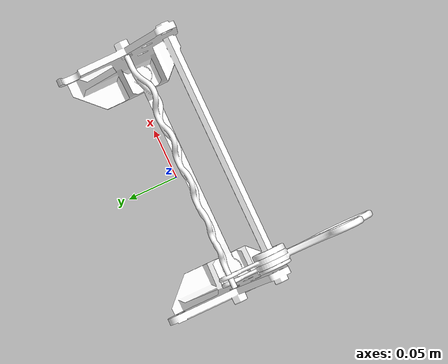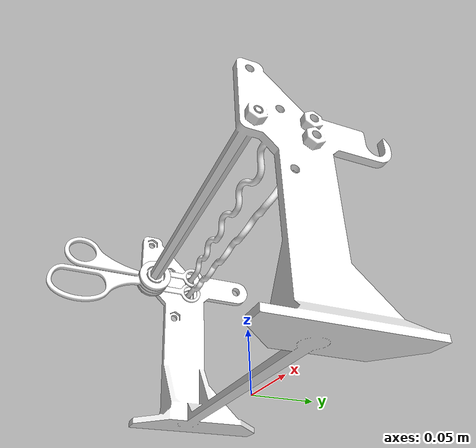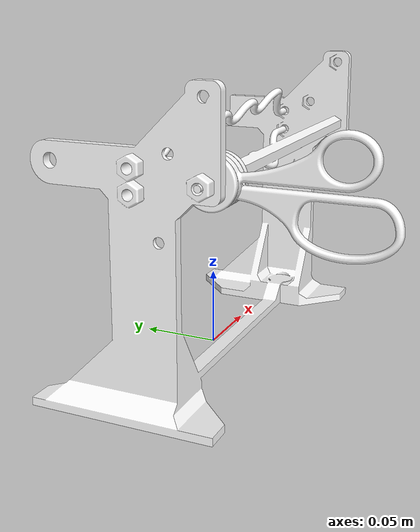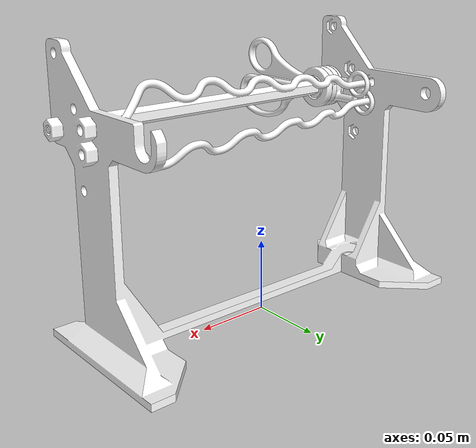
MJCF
<mujoco model="H1_Scissors">

  <asset>
    <mesh name="i10_horizontal_base" file="i10_horizontal_base.stl" scale="1 1 1"/>
    <mesh name="i10_traj_upper_part_0" file="i10_traj_upper/part_0.obj" scale="1 1 1"/>
    <mesh name="i10_traj_upper_part_1" file="i10_traj_upper/part_1.obj" scale="1 1 1"/>
    <mesh name="i10_traj_upper_part_2" file="i10_traj_upper/part_2.obj" scale="1 1 1"/>
    <mesh name="i10_traj_upper_part_3" file="i10_traj_upper/part_3.obj" scale="1 1 1"/>
    <mesh name="i10_traj_upper_part_4" file="i10_traj_upper/part_4.obj" scale="1 1 1"/>
    <mesh name="i10_traj_upper_part_5" file="i10_traj_upper/part_5.obj" scale="1 1 1"/>
    <mesh name="i10_traj_upper_part_6" file="i10_traj_upper/part_6.obj" scale="1 1 1"/>
    <mesh name="i10_traj_upper_part_7" file="i10_traj_upper/part_7.obj" scale="1 1 1"/>
    <mesh name="i10_traj_upper_part_8" file="i10_traj_upper/part_8.obj" scale="1 1 1"/>
    <mesh name="i10_traj_upper_part_9" file="i10_traj_upper/part_9.obj" scale="1 1 1"/>
    <mesh name="i10_traj_upper_part_10" file="i10_traj_upper/part_10.obj" scale="1 1 1"/>
    <mesh name="i10_traj_upper_part_11" file="i10_traj_upper/part_11.obj" scale="1 1 1"/>
    <mesh name="i10_traj_upper_part_12" file="i10_traj_upper/part_12.obj" scale="1 1 1"/>
    <mesh name="i10_traj_upper_part_13" file="i10_traj_upper/part_13.obj" scale="1 1 1"/>
    <mesh name="i10_traj_upper_part_14" file="i10_traj_upper/part_14.obj" scale="1 1 1"/>
    <mesh name="i10_traj_upper_part_15" file="i10_traj_upper/part_15.obj" scale="1 1 1"/>
    <mesh name="i10_traj_upper_part_16" file="i10_traj_upper/part_16.obj" scale="1 1 1"/>
    <mesh name="i10_traj_upper_part_17" file="i10_traj_upper/part_17.obj" scale="1 1 1"/>
    <mesh name="i10_traj_upper_part_18" file="i10_traj_upper/part_18.obj" scale="1 1 1"/>
    <mesh name="i10_traj_upper_part_19" file="i10_traj_upper/part_19.obj" scale="1 1 1"/>
    <mesh name="i10_traj_upper_part_20" file="i10_traj_upper/part_20.obj" scale="1 1 1"/>
    <mesh name="i10_traj_upper_part_21" file="i10_traj_upper/part_21.obj" scale="1 1 1"/>
    <mesh name="i10_traj_upper_part_22" file="i10_traj_upper/part_22.obj" scale="1 1 1"/>

    <mesh name="i10_traj_lower_part_0" file="i10_traj_lower/part_0.obj" scale="1 1 1"/>
    <mesh name="i10_traj_lower_part_1" file="i10_traj_lower/part_1.obj" scale="1 1 1"/>
    <mesh name="i10_traj_lower_part_2" file="i10_traj_lower/part_2.obj" scale="1 1 1"/>
    <mesh name="i10_traj_lower_part_3" file="i10_traj_lower/part_3.obj" scale="1 1 1"/>
    <mesh name="i10_traj_lower_part_4" file="i10_traj_lower/part_4.obj" scale="1 1 1"/>
    <mesh name="i10_traj_lower_part_5" file="i10_traj_lower/part_5.obj" scale="1 1 1"/>
    <mesh name="i10_traj_lower_part_6" file="i10_traj_lower/part_6.obj" scale="1 1 1"/>
    <mesh name="i10_traj_lower_part_7" file="i10_traj_lower/part_7.obj" scale="1 1 1"/>
    <mesh name="i10_traj_lower_part_8" file="i10_traj_lower/part_8.obj" scale="1 1 1"/>
    <mesh name="i10_traj_lower_part_9" file="i10_traj_lower/part_9.obj" scale="1 1 1"/>
    <mesh name="i10_traj_lower_part_10" file="i10_traj_lower/part_10.obj" scale="1 1 1"/>
    <mesh name="i10_traj_lower_part_11" file="i10_traj_lower/part_11.obj" scale="1 1 1"/>
    <mesh name="i10_traj_lower_part_12" file="i10_traj_lower/part_12.obj" scale="1 1 1"/>
    <mesh name="i10_traj_lower_part_13" file="i10_traj_lower/part_13.obj" scale="1 1 1"/>
    <mesh name="i10_traj_lower_part_14" file="i10_traj_lower/part_14.obj" scale="1 1 1"/>
    <mesh name="i10_traj_lower_part_15" file="i10_traj_lower/part_15.obj" scale="1 1 1"/>
    <mesh name="i10_traj_lower_part_16" file="i10_traj_lower/part_16.obj" scale="1 1 1"/>
    <mesh name="i10_traj_lower_part_17" file="i10_traj_lower/part_17.obj" scale="1 1 1"/>
    <mesh name="i10_traj_lower_part_18" file="i10_traj_lower/part_18.obj" scale="1 1 1"/>
    <mesh name="i10_traj_lower_part_19" file="i10_traj_lower/part_19.obj" scale="1 1 1"/>
    <mesh name="i10_traj_lower_part_20" file="i10_traj_lower/part_20.obj" scale="1 1 1"/>
    <mesh name="i10_traj_lower_part_21" file="i10_traj_lower/part_21.obj" scale="1 1 1"/>
    <mesh name="i10_traj_lower_part_22" file="i10_traj_lower/part_22.obj" scale="1 1 1"/>
    <mesh name="i10_traj_lower_part_23" file="i10_traj_lower/part_23.obj" scale="1 1 1"/>
    <mesh name="i10_traj_lower_part_24" file="i10_traj_lower/part_24.obj" scale="1 1 1"/>

    <mesh name="scissors_joint" file="scissors_joint.stl" scale="1 1 1"/>
    <mesh name="scissors_finger_side" file="scissors_finger_side.stl" scale="1 1 1"/>
    <mesh name="scissors_thumb_side" file="scissors_thumb_side.stl" scale="1 1 1"/>

    <mesh name="i10_thumb_handle_convex_part_0" file="i10_thumb_handle_decomposed_meshes/i10_thumb_handle_convex_part_0.obj" scale="1 1 1"/>
    <mesh name="i10_thumb_handle_convex_part_1" file="i10_thumb_handle_decomposed_meshes/i10_thumb_handle_convex_part_1.obj" scale="1 1 1"/>
    <mesh name="i10_thumb_handle_convex_part_2" file="i10_thumb_handle_decomposed_meshes/i10_thumb_handle_convex_part_2.obj" scale="1 1 1"/>
    <mesh name="i10_thumb_handle_convex_part_3" file="i10_thumb_handle_decomposed_meshes/i10_thumb_handle_convex_part_3.obj" scale="1 1 1"/>
    <mesh name="i10_thumb_handle_convex_part_4" file="i10_thumb_handle_decomposed_meshes/i10_thumb_handle_convex_part_4.obj" scale="1 1 1"/>
    <mesh name="i10_thumb_handle_convex_part_5" file="i10_thumb_handle_decomposed_meshes/i10_thumb_handle_convex_part_5.obj" scale="1 1 1"/>
    <mesh name="i10_thumb_handle_convex_part_6" file="i10_thumb_handle_decomposed_meshes/i10_thumb_handle_convex_part_6.obj" scale="1 1 1"/>
    <mesh name="i10_thumb_handle_convex_part_7" file="i10_thumb_handle_decomposed_meshes/i10_thumb_handle_convex_part_7.obj" scale="1 1 1"/>
    <mesh name="i10_thumb_handle_convex_part_8" file="i10_thumb_handle_decomposed_meshes/i10_thumb_handle_convex_part_8.obj" scale="1 1 1"/>
    <mesh name="i10_thumb_handle_convex_part_9" file="i10_thumb_handle_decomposed_meshes/i10_thumb_handle_convex_part_9.obj" scale="1 1 1"/>
    <mesh name="i10_thumb_handle_convex_part_10" file="i10_thumb_handle_decomposed_meshes/i10_thumb_handle_convex_part_10.obj" scale="1 1 1"/>
    <mesh name="i10_thumb_handle_convex_part_11" file="i10_thumb_handle_decomposed_meshes/i10_thumb_handle_convex_part_11.obj" scale="1 1 1"/>
    <mesh name="i10_thumb_handle_convex_part_12" file="i10_thumb_handle_decomposed_meshes/i10_thumb_handle_convex_part_12.obj" scale="1 1 1"/>
    <mesh name="i10_thumb_handle_convex_part_13" file="i10_thumb_handle_decomposed_meshes/i10_thumb_handle_convex_part_13.obj" scale="1 1 1"/>
    <mesh name="i10_thumb_handle_convex_part_14" file="i10_thumb_handle_decomposed_meshes/i10_thumb_handle_convex_part_14.obj" scale="1 1 1"/>
    <mesh name="i10_thumb_handle_convex_part_15" file="i10_thumb_handle_decomposed_meshes/i10_thumb_handle_convex_part_15.obj" scale="1 1 1"/>
    <mesh name="i10_thumb_handle_convex_part_16" file="i10_thumb_handle_decomposed_meshes/i10_thumb_handle_convex_part_16.obj" scale="1 1 1"/>
    <mesh name="i10_thumb_handle_convex_part_17" file="i10_thumb_handle_decomposed_meshes/i10_thumb_handle_convex_part_17.obj" scale="1 1 1"/>
    <mesh name="i10_thumb_handle_convex_part_18" file="i10_thumb_handle_decomposed_meshes/i10_thumb_handle_convex_part_18.obj" scale="1 1 1"/>
    <mesh name="i10_thumb_handle_convex_part_19" file="i10_thumb_handle_decomposed_meshes/i10_thumb_handle_convex_part_19.obj" scale="1 1 1"/>
    <mesh name="i10_thumb_handle_convex_part_20" file="i10_thumb_handle_decomposed_meshes/i10_thumb_handle_convex_part_20.obj" scale="1 1 1"/>

    <mesh name="i10_finger_handle_convex_part_0" file="i10_finger_handle_decomposed_meshes/i10_finger_handle_convex_part_0.obj" scale="1 1 1"/>
    <mesh name="i10_finger_handle_convex_part_1" file="i10_finger_handle_decomposed_meshes/i10_finger_handle_convex_part_1.obj" scale="1 1 1"/>
    <mesh name="i10_finger_handle_convex_part_2" file="i10_finger_handle_decomposed_meshes/i10_finger_handle_convex_part_2.obj" scale="1 1 1"/>
    <mesh name="i10_finger_handle_convex_part_3" file="i10_finger_handle_decomposed_meshes/i10_finger_handle_convex_part_3.obj" scale="1 1 1"/>
    <mesh name="i10_finger_handle_convex_part_4" file="i10_finger_handle_decomposed_meshes/i10_finger_handle_convex_part_4.obj" scale="1 1 1"/>
    <mesh name="i10_finger_handle_convex_part_5" file="i10_finger_handle_decomposed_meshes/i10_finger_handle_convex_part_5.obj" scale="1 1 1"/>
    <mesh name="i10_finger_handle_convex_part_6" file="i10_finger_handle_decomposed_meshes/i10_finger_handle_convex_part_6.obj" scale="1 1 1"/>
    <mesh name="i10_finger_handle_convex_part_7" file="i10_finger_handle_decomposed_meshes/i10_finger_handle_convex_part_7.obj" scale="1 1 1"/>
    <mesh name="i10_finger_handle_convex_part_8" file="i10_finger_handle_decomposed_meshes/i10_finger_handle_convex_part_8.obj" scale="1 1 1"/>
    <mesh name="i10_finger_handle_convex_part_9" file="i10_finger_handle_decomposed_meshes/i10_finger_handle_convex_part_9.obj" scale="1 1 1"/>
    <mesh name="i10_finger_handle_convex_part_10" file="i10_finger_handle_decomposed_meshes/i10_finger_handle_convex_part_10.obj" scale="1 1 1"/>
    <mesh name="i10_finger_handle_convex_part_11" file="i10_finger_handle_decomposed_meshes/i10_finger_handle_convex_part_11.obj" scale="1 1 1"/>
    <mesh name="i10_finger_handle_convex_part_12" file="i10_finger_handle_decomposed_meshes/i10_finger_handle_convex_part_12.obj" scale="1 1 1"/>
    <mesh name="i10_finger_handle_convex_part_13" file="i10_finger_handle_decomposed_meshes/i10_finger_handle_convex_part_13.obj" scale="1 1 1"/>
    <mesh name="i10_finger_handle_convex_part_14" file="i10_finger_handle_decomposed_meshes/i10_finger_handle_convex_part_14.obj" scale="1 1 1"/>
    <mesh name="i10_finger_handle_convex_part_15" file="i10_finger_handle_decomposed_meshes/i10_finger_handle_convex_part_15.obj" scale="1 1 1"/>
    <mesh name="i10_finger_handle_convex_part_16" file="i10_finger_handle_decomposed_meshes/i10_finger_handle_convex_part_16.obj" scale="1 1 1"/>
    <mesh name="i10_finger_handle_convex_part_17" file="i10_finger_handle_decomposed_meshes/i10_finger_handle_convex_part_17.obj" scale="1 1 1"/>
    <mesh name="i10_finger_handle_convex_part_18" file="i10_finger_handle_decomposed_meshes/i10_finger_handle_convex_part_18.obj" scale="1 1 1"/>
    <mesh name="i10_finger_handle_convex_part_19" file="i10_finger_handle_decomposed_meshes/i10_finger_handle_convex_part_19.obj" scale="1 1 1"/>
    <mesh name="i10_finger_handle_convex_part_20" file="i10_finger_handle_decomposed_meshes/i10_finger_handle_convex_part_20.obj" scale="1 1 1"/>
    <mesh name="i10_finger_handle_convex_part_21" file="i10_finger_handle_decomposed_meshes/i10_finger_handle_convex_part_21.obj" scale="1 1 1"/>
    <mesh name="i10_finger_handle_convex_part_22" file="i10_finger_handle_decomposed_meshes/i10_finger_handle_convex_part_22.obj" scale="1 1 1"/>

    <mesh name="i10_ring_convex_part_0" file="i10_ring_decomposed_meshes/i10_ring_convex_part_0.obj" scale="1 1 1"/>
    <mesh name="i10_ring_convex_part_1" file="i10_ring_decomposed_meshes/i10_ring_convex_part_1.obj" scale="1 1 1"/>
    <mesh name="i10_ring_convex_part_2" file="i10_ring_decomposed_meshes/i10_ring_convex_part_2.obj" scale="1 1 1"/>
    <mesh name="i10_ring_convex_part_3" file="i10_ring_decomposed_meshes/i10_ring_convex_part_3.obj" scale="1 1 1"/>
    <mesh name="i10_ring_convex_part_4" file="i10_ring_decomposed_meshes/i10_ring_convex_part_4.obj" scale="1 1 1"/>
    <mesh name="i10_ring_convex_part_5" file="i10_ring_decomposed_meshes/i10_ring_convex_part_5.obj" scale="1 1 1"/>
    <mesh name="i10_ring_convex_part_6" file="i10_ring_decomposed_meshes/i10_ring_convex_part_6.obj" scale="1 1 1"/>
    <mesh name="i10_ring_convex_part_7" file="i10_ring_decomposed_meshes/i10_ring_convex_part_7.obj" scale="1 1 1"/>
    <mesh name="i10_ring_convex_part_8" file="i10_ring_decomposed_meshes/i10_ring_convex_part_8.obj" scale="1 1 1"/>
    <mesh name="i10_ring_convex_part_9" file="i10_ring_decomposed_meshes/i10_ring_convex_part_9.obj" scale="1 1 1"/>
    <mesh name="i10_ring_convex_part_10" file="i10_ring_decomposed_meshes/i10_ring_convex_part_10.obj" scale="1 1 1"/>
    <mesh name="i10_ring_convex_part_11" file="i10_ring_decomposed_meshes/i10_ring_convex_part_11.obj" scale="1 1 1"/>
    <mesh name="i10_ring_convex_part_12" file="i10_ring_decomposed_meshes/i10_ring_convex_part_12.obj" scale="1 1 1"/>
    <mesh name="i10_ring_convex_part_13" file="i10_ring_decomposed_meshes/i10_ring_convex_part_13.obj" scale="1 1 1"/>
    <mesh name="i10_ring_convex_part_14" file="i10_ring_decomposed_meshes/i10_ring_convex_part_14.obj" scale="1 1 1"/>
    <mesh name="i10_ring_convex_part_15" file="i10_ring_decomposed_meshes/i10_ring_convex_part_15.obj" scale="1 1 1"/>
    <mesh name="i10_ring_convex_part_16" file="i10_ring_decomposed_meshes/i10_ring_convex_part_16.obj" scale="1 1 1"/>
    <mesh name="i10_ring_convex_part_17" file="i10_ring_decomposed_meshes/i10_ring_convex_part_17.obj" scale="1 1 1"/>
    <mesh name="i10_ring_convex_part_18" file="i10_ring_decomposed_meshes/i10_ring_convex_part_18.obj" scale="1 1 1"/>
    <mesh name="i10_ring_convex_part_19" file="i10_ring_decomposed_meshes/i10_ring_convex_part_19.obj" scale="1 1 1"/>
    <mesh name="i10_ring_convex_part_20" file="i10_ring_decomposed_meshes/i10_ring_convex_part_20.obj" scale="1 1 1"/>
    <mesh name="i10_ring_convex_part_21" file="i10_ring_decomposed_meshes/i10_ring_convex_part_21.obj" scale="1 1 1"/>
    <mesh name="i10_ring_convex_part_22" file="i10_ring_decomposed_meshes/i10_ring_convex_part_22.obj" scale="1 1 1"/>
    <mesh name="i10_ring_convex_part_23" file="i10_ring_decomposed_meshes/i10_ring_convex_part_23.obj" scale="1 1 1"/>
    <mesh name="i10_ring_convex_part_24" file="i10_ring_decomposed_meshes/i10_ring_convex_part_24.obj" scale="1 1 1"/>
    <mesh name="i10_ring_convex_part_25" file="i10_ring_decomposed_meshes/i10_ring_convex_part_25.obj" scale="1 1 1"/>
    <mesh name="i10_ring_convex_part_26" file="i10_ring_decomposed_meshes/i10_ring_convex_part_26.obj" scale="1 1 1"/>
    <mesh name="i10_ring_convex_part_27" file="i10_ring_decomposed_meshes/i10_ring_convex_part_27.obj" scale="1 1 1"/>
    <mesh name="i10_ring_convex_part_28" file="i10_ring_decomposed_meshes/i10_ring_convex_part_28.obj" scale="1 1 1"/>
    <mesh name="i10_ring_convex_part_29" file="i10_ring_decomposed_meshes/i10_ring_convex_part_29.obj" scale="1 1 1"/>
    <mesh name="i10_ring_convex_part_30" file="i10_ring_decomposed_meshes/i10_ring_convex_part_30.obj" scale="1 1 1"/>
    <mesh name="i10_ring_convex_part_31" file="i10_ring_decomposed_meshes/i10_ring_convex_part_31.obj" scale="1 1 1"/>
    <mesh name="i10_ring_convex_part_32" file="i10_ring_decomposed_meshes/i10_ring_convex_part_32.obj" scale="1 1 1"/>
    <mesh name="i10_ring_convex_part_33" file="i10_ring_decomposed_meshes/i10_ring_convex_part_33.obj" scale="1 1 1"/>
    <mesh name="i10_ring_convex_part_34" file="i10_ring_decomposed_meshes/i10_ring_convex_part_34.obj" scale="1 1 1"/>
    <mesh name="i10_ring_convex_part_35" file="i10_ring_decomposed_meshes/i10_ring_convex_part_35.obj" scale="1 1 1"/>

    <material name="object_material" rgba="1 1 1 1" shininess="0.3"/>
  </asset>

  <default>
    <default class="visual">
      <geom contype="0" conaffinity="0" group="2"/>
    </default>
    <default class="collision">
      <geom group="3"/>
    </default>
  </default>

  <worldbody>
    <body name="i10_horizontal_base_body" pos="0 0 0">
      <geom name="i10_horizontal_base" type="mesh" mesh="i10_horizontal_base" material="object_material" mass="1" class="visual"/>
      <geom type="box" size="0.003 0.020 0.0775" pos="-0.1155 -0.0118 0.0775" density="248" class="collision"/>
      <geom type="box" size="0.003 0.020 0.0775" pos="0.1155 -0.0118 0.0775" density="248" class="collision"/>
      <geom name="i10_traj_upper_part_0" type="mesh" mesh="i10_traj_upper_part_0" class="collision" solref="0.002 1" friction="1 0.1 0.1"/>
      <geom name="i10_traj_upper_part_1" type="mesh" mesh="i10_traj_upper_part_1" class="collision" solref="0.002 1" friction="1 0.1 0.1"/>
      <geom name="i10_traj_upper_part_2" type="mesh" mesh="i10_traj_upper_part_2" class="collision" solref="0.002 1" friction="1 0.1 0.1"/>
      <geom name="i10_traj_upper_part_3" type="mesh" mesh="i10_traj_upper_part_3" class="collision" solref="0.002 1" friction="1 0.1 0.1"/>
      <geom name="i10_traj_upper_part_4" type="mesh" mesh="i10_traj_upper_part_4" class="collision" solref="0.002 1" friction="1 0.1 0.1"/>
      <geom name="i10_traj_upper_part_5" type="mesh" mesh="i10_traj_upper_part_5" class="collision" solref="0.002 1" friction="1 0.1 0.1"/>
      <geom name="i10_traj_upper_part_6" type="mesh" mesh="i10_traj_upper_part_6" class="collision" solref="0.002 1" friction="1 0.1 0.1"/>
      <geom name="i10_traj_upper_part_7" type="mesh" mesh="i10_traj_upper_part_7" class="collision" solref="0.002 1" friction="1 0.1 0.1"/>
      <geom name="i10_traj_upper_part_8" type="mesh" mesh="i10_traj_upper_part_8" class="collision" solref="0.002 1" friction="1 0.1 0.1"/>
      <geom name="i10_traj_upper_part_9" type="mesh" mesh="i10_traj_upper_part_9" class="collision" solref="0.002 1" friction="1 0.1 0.1"/>
      <geom name="i10_traj_upper_part_10" type="mesh" mesh="i10_traj_upper_part_10" class="collision" solref="0.002 1" friction="1 0.1 0.1"/>
      <geom name="i10_traj_upper_part_11" type="mesh" mesh="i10_traj_upper_part_11" class="collision" solref="0.002 1" friction="1 0.1 0.1"/>
      <geom name="i10_traj_upper_part_12" type="mesh" mesh="i10_traj_upper_part_12" class="collision" solref="0.002 1" friction="1 0.1 0.1"/>
      <geom name="i10_traj_upper_part_13" type="mesh" mesh="i10_traj_upper_part_13" class="collision" solref="0.002 1" friction="1 0.1 0.1"/>
      <geom name="i10_traj_upper_part_14" type="mesh" mesh="i10_traj_upper_part_14" class="collision" solref="0.002 1" friction="1 0.1 0.1"/>
      <geom name="i10_traj_upper_part_15" type="mesh" mesh="i10_traj_upper_part_15" class="collision" solref="0.002 1" friction="1 0.1 0.1"/>
      <geom name="i10_traj_upper_part_16" type="mesh" mesh="i10_traj_upper_part_16" class="collision" solref="0.002 1" friction="1 0.1 0.1"/>
      <geom name="i10_traj_upper_part_17" type="mesh" mesh="i10_traj_upper_part_17" class="collision" solref="0.002 1" friction="1 0.1 0.1"/>
      <geom name="i10_traj_upper_part_18" type="mesh" mesh="i10_traj_upper_part_18" class="collision" solref="0.002 1" friction="1 0.1 0.1"/>
      <geom name="i10_traj_upper_part_19" type="mesh" mesh="i10_traj_upper_part_19" class="collision" solref="0.002 1" friction="1 0.1 0.1"/>
      <geom name="i10_traj_upper_part_20" type="mesh" mesh="i10_traj_upper_part_20" class="collision" solref="0.002 1" friction="1 0.1 0.1"/>
      <geom name="i10_traj_upper_part_21" type="mesh" mesh="i10_traj_upper_part_21" class="collision" solref="0.002 1" friction="1 0.1 0.1"/>
      <geom name="i10_traj_upper_part_22" type="mesh" mesh="i10_traj_upper_part_22" class="collision" solref="0.002 1" friction="1 0.1 0.1"/>

      <geom name="i10_traj_lower_part_0" type="mesh" mesh="i10_traj_lower_part_0" class="collision" solref="0.002 1" friction="1 0.1 0.1"/>
      <geom name="i10_traj_lower_part_1" type="mesh" mesh="i10_traj_lower_part_1" class="collision" solref="0.002 1" friction="1 0.1 0.1"/>
      <geom name="i10_traj_lower_part_2" type="mesh" mesh="i10_traj_lower_part_2" class="collision" solref="0.002 1" friction="1 0.1 0.1"/>
      <geom name="i10_traj_lower_part_3" type="mesh" mesh="i10_traj_lower_part_3" class="collision" solref="0.002 1" friction="1 0.1 0.1"/>
      <geom name="i10_traj_lower_part_4" type="mesh" mesh="i10_traj_lower_part_4" class="collision" solref="0.002 1" friction="1 0.1 0.1"/>
      <geom name="i10_traj_lower_part_5" type="mesh" mesh="i10_traj_lower_part_5" class="collision" solref="0.002 1" friction="1 0.1 0.1"/>
      <geom name="i10_traj_lower_part_6" type="mesh" mesh="i10_traj_lower_part_6" class="collision" solref="0.002 1" friction="1 0.1 0.1"/>
      <geom name="i10_traj_lower_part_7" type="mesh" mesh="i10_traj_lower_part_7" class="collision" solref="0.002 1" friction="1 0.1 0.1"/>
      <geom name="i10_traj_lower_part_8" type="mesh" mesh="i10_traj_lower_part_8" class="collision" solref="0.002 1" friction="1 0.1 0.1"/>
      <geom name="i10_traj_lower_part_9" type="mesh" mesh="i10_traj_lower_part_9" class="collision" solref="0.002 1" friction="1 0.1 0.1"/>
      <geom name="i10_traj_lower_part_10" type="mesh" mesh="i10_traj_lower_part_10" class="collision" solref="0.002 1" friction="1 0.1 0.1"/>
      <geom name="i10_traj_lower_part_11" type="mesh" mesh="i10_traj_lower_part_11" class="collision" solref="0.002 1" friction="1 0.1 0.1"/>
      <geom name="i10_traj_lower_part_12" type="mesh" mesh="i10_traj_lower_part_12" class="collision" solref="0.002 1" friction="1 0.1 0.1"/>
      <geom name="i10_traj_lower_part_13" type="mesh" mesh="i10_traj_lower_part_13" class="collision" solref="0.002 1" friction="1 0.1 0.1"/>
      <geom name="i10_traj_lower_part_14" type="mesh" mesh="i10_traj_lower_part_14" class="collision" solref="0.002 1" friction="1 0.1 0.1"/>
      <geom name="i10_traj_lower_part_15" type="mesh" mesh="i10_traj_lower_part_15" class="collision" solref="0.002 1" friction="1 0.1 0.1"/>
      <geom name="i10_traj_lower_part_16" type="mesh" mesh="i10_traj_lower_part_16" class="collision" solref="0.002 1" friction="1 0.1 0.1"/>
      <geom name="i10_traj_lower_part_17" type="mesh" mesh="i10_traj_lower_part_17" class="collision" solref="0.002 1" friction="1 0.1 0.1"/>
      <geom name="i10_traj_lower_part_18" type="mesh" mesh="i10_traj_lower_part_18" class="collision" solref="0.002 1" friction="1 0.1 0.1"/>
      <geom name="i10_traj_lower_part_19" type="mesh" mesh="i10_traj_lower_part_19" class="collision" solref="0.002 1" friction="1 0.1 0.1"/>
      <geom name="i10_traj_lower_part_20" type="mesh" mesh="i10_traj_lower_part_20" class="collision" solref="0.002 1" friction="1 0.1 0.1"/>
      <geom name="i10_traj_lower_part_21" type="mesh" mesh="i10_traj_lower_part_21" class="collision" solref="0.002 1" friction="1 0.1 0.1"/>
      <geom name="i10_traj_lower_part_22" type="mesh" mesh="i10_traj_lower_part_22" class="collision" solref="0.002 1" friction="1 0.1 0.1"/>
      <geom name="i10_traj_lower_part_23" type="mesh" mesh="i10_traj_lower_part_23" class="collision" solref="0.002 1" friction="1 0.1 0.1"/>
      <geom name="i10_traj_lower_part_24" type="mesh" mesh="i10_traj_lower_part_24" class="collision" solref="0.002 1" friction="1 0.1 0.1"/>
    </body>

    <body name="scissors_body" pos="-0.1095 -0.0478 0.138">
      <joint name="scissors_slide" type="slide" axis="1 0 0" range="0 0.20725" damping="0.05"/>
      <geom name="scissors_joint" type="mesh" mesh="scissors_joint" material="object_material" class="visual"/>
      <geom type="cylinder" size="0.0152 0.008875" quat="0.7071068 0 0.7071068 0" pos="0.00588 0 0" density="248" class="collision" solref="0.002 1"/>
      <body name="scissors_thumb_side" pos="0 0 0">
        <joint name="scissors_thumb_side_hinge" type="hinge" axis="-1 0 0" range="0 0.5236" damping="0.05"/>
        <geom name="scissors_thumb_side" type="mesh" mesh="scissors_thumb_side" material="object_material" class="visual"/>
        <geom name="i10_thumb_handle_convex_part_0" type="mesh" mesh="i10_thumb_handle_convex_part_0" class="collision"/>
        <geom name="i10_thumb_handle_convex_part_1" type="mesh" mesh="i10_thumb_handle_convex_part_1" class="collision"/>
        <geom name="i10_thumb_handle_convex_part_2" type="mesh" mesh="i10_thumb_handle_convex_part_2" class="collision"/>
        <geom name="i10_thumb_handle_convex_part_3" type="mesh" mesh="i10_thumb_handle_convex_part_3" class="collision"/>
        <geom name="i10_thumb_handle_convex_part_4" type="mesh" mesh="i10_thumb_handle_convex_part_4" class="collision"/>
        <geom name="i10_thumb_handle_convex_part_5" type="mesh" mesh="i10_thumb_handle_convex_part_5" class="collision"/>
        <geom name="i10_thumb_handle_convex_part_6" type="mesh" mesh="i10_thumb_handle_convex_part_6" class="collision"/>
        <geom name="i10_thumb_handle_convex_part_7" type="mesh" mesh="i10_thumb_handle_convex_part_7" class="collision"/>
        <geom name="i10_thumb_handle_convex_part_8" type="mesh" mesh="i10_thumb_handle_convex_part_8" class="collision"/>
        <geom name="i10_thumb_handle_convex_part_9" type="mesh" mesh="i10_thumb_handle_convex_part_9" class="collision"/>
        <geom name="i10_thumb_handle_convex_part_10" type="mesh" mesh="i10_thumb_handle_convex_part_10" class="collision"/>
        <geom name="i10_thumb_handle_convex_part_11" type="mesh" mesh="i10_thumb_handle_convex_part_11" class="collision"/>
        <geom name="i10_thumb_handle_convex_part_12" type="mesh" mesh="i10_thumb_handle_convex_part_12" class="collision"/>
        <geom name="i10_thumb_handle_convex_part_13" type="mesh" mesh="i10_thumb_handle_convex_part_13" class="collision"/>
        <geom name="i10_thumb_handle_convex_part_14" type="mesh" mesh="i10_thumb_handle_convex_part_14" class="collision"/>
        <geom name="i10_thumb_handle_convex_part_15" type="mesh" mesh="i10_thumb_handle_convex_part_15" class="collision"/>
        <geom name="i10_thumb_handle_convex_part_16" type="mesh" mesh="i10_thumb_handle_convex_part_16" class="collision"/>
        <geom name="i10_thumb_handle_convex_part_17" type="mesh" mesh="i10_thumb_handle_convex_part_17" class="collision"/>
        <geom name="i10_thumb_handle_convex_part_18" type="mesh" mesh="i10_thumb_handle_convex_part_18" class="collision"/>
        <geom name="i10_thumb_handle_convex_part_19" type="mesh" mesh="i10_thumb_handle_convex_part_19" class="collision"/>
        <geom name="i10_thumb_handle_convex_part_20" type="mesh" mesh="i10_thumb_handle_convex_part_20" class="collision"/>

        <geom name="i10_ring_convex_part_0" type="mesh" mesh="i10_ring_convex_part_0" pos="0.00195 0.040 -0.007" density="248" class="collision" friction="1 0.1 0.1"/>
        <geom name="i10_ring_convex_part_1" type="mesh" mesh="i10_ring_convex_part_1" pos="0.00195 0.040 -0.007" density="248" class="collision" friction="1 0.1 0.1"/>
        <geom name="i10_ring_convex_part_2" type="mesh" mesh="i10_ring_convex_part_2" pos="0.00195 0.040 -0.007" density="248" class="collision" friction="1 0.1 0.1"/>
        <geom name="i10_ring_convex_part_3" type="mesh" mesh="i10_ring_convex_part_3" pos="0.00195 0.040 -0.007" density="248" class="collision" friction="1 0.1 0.1"/>
        <geom name="i10_ring_convex_part_4" type="mesh" mesh="i10_ring_convex_part_4" pos="0.00195 0.040 -0.007" density="248" class="collision" friction="1 0.1 0.1"/>
        <geom name="i10_ring_convex_part_5" type="mesh" mesh="i10_ring_convex_part_5" pos="0.00195 0.040 -0.007" density="248" class="collision" friction="1 0.1 0.1"/>
        <geom name="i10_ring_convex_part_6" type="mesh" mesh="i10_ring_convex_part_6" pos="0.00195 0.040 -0.007" density="248" class="collision" friction="1 0.1 0.1"/>
        <geom name="i10_ring_convex_part_7" type="mesh" mesh="i10_ring_convex_part_7" pos="0.00195 0.040 -0.007" density="248" class="collision" friction="1 0.1 0.1"/>
        <geom name="i10_ring_convex_part_8" type="mesh" mesh="i10_ring_convex_part_8" pos="0.00195 0.040 -0.007" density="248" class="collision" friction="1 0.1 0.1"/>
        <geom name="i10_ring_convex_part_9" type="mesh" mesh="i10_ring_convex_part_9" pos="0.00195 0.040 -0.007" density="248" class="collision" friction="1 0.1 0.1"/>
        <geom name="i10_ring_convex_part_10" type="mesh" mesh="i10_ring_convex_part_10" pos="0.00195 0.040 -0.007" density="248" class="collision" friction="1 0.1 0.1"/>
        <geom name="i10_ring_convex_part_11" type="mesh" mesh="i10_ring_convex_part_11" pos="0.00195 0.040 -0.007" density="248" class="collision" friction="1 0.1 0.1"/>
        <geom name="i10_ring_convex_part_12" type="mesh" mesh="i10_ring_convex_part_12" pos="0.00195 0.040 -0.007" density="248" class="collision" friction="1 0.1 0.1"/>
        <geom name="i10_ring_convex_part_13" type="mesh" mesh="i10_ring_convex_part_13" pos="0.00195 0.040 -0.007" density="248" class="collision" friction="1 0.1 0.1"/>
        <geom name="i10_ring_convex_part_14" type="mesh" mesh="i10_ring_convex_part_14" pos="0.00195 0.040 -0.007" density="248" class="collision" friction="1 0.1 0.1"/>
        <geom name="i10_ring_convex_part_15" type="mesh" mesh="i10_ring_convex_part_15" pos="0.00195 0.040 -0.007" density="248" class="collision" friction="1 0.1 0.1"/>
        <geom name="i10_ring_convex_part_16" type="mesh" mesh="i10_ring_convex_part_16" pos="0.00195 0.040 -0.007" density="248" class="collision" friction="1 0.1 0.1"/>
        <geom name="i10_ring_convex_part_17" type="mesh" mesh="i10_ring_convex_part_17" pos="0.00195 0.040 -0.007" density="248" class="collision" friction="1 0.1 0.1"/>
        <geom name="i10_ring_convex_part_18" type="mesh" mesh="i10_ring_convex_part_18" pos="0.00195 0.040 -0.007" density="248" class="collision" friction="1 0.1 0.1"/>
        <geom name="i10_ring_convex_part_19" type="mesh" mesh="i10_ring_convex_part_19" pos="0.00195 0.040 -0.007" density="248" class="collision" friction="1 0.1 0.1"/>
        <geom name="i10_ring_convex_part_20" type="mesh" mesh="i10_ring_convex_part_20" pos="0.00195 0.040 -0.007" density="248" class="collision" friction="1 0.1 0.1"/>
        <geom name="i10_ring_convex_part_21" type="mesh" mesh="i10_ring_convex_part_21" pos="0.00195 0.040 -0.007" density="248" class="collision" friction="1 0.1 0.1"/>
        <geom name="i10_ring_convex_part_22" type="mesh" mesh="i10_ring_convex_part_22" pos="0.00195 0.040 -0.007" density="248" class="collision" friction="1 0.1 0.1"/>
        <geom name="i10_ring_convex_part_23" type="mesh" mesh="i10_ring_convex_part_23" pos="0.00195 0.040 -0.007" density="248" class="collision" friction="1 0.1 0.1"/>
        <geom name="i10_ring_convex_part_24" type="mesh" mesh="i10_ring_convex_part_24" pos="0.00195 0.040 -0.007" density="248" class="collision" friction="1 0.1 0.1"/>
        <geom name="i10_ring_convex_part_25" type="mesh" mesh="i10_ring_convex_part_25" pos="0.00195 0.040 -0.007" density="248" class="collision" friction="1 0.1 0.1"/>
        <geom name="i10_ring_convex_part_26" type="mesh" mesh="i10_ring_convex_part_26" pos="0.00195 0.040 -0.007" density="248" class="collision" friction="1 0.1 0.1"/>
        <geom name="i10_ring_convex_part_27" type="mesh" mesh="i10_ring_convex_part_27" pos="0.00195 0.040 -0.007" density="248" class="collision" friction="1 0.1 0.1"/>
        <geom name="i10_ring_convex_part_28" type="mesh" mesh="i10_ring_convex_part_28" pos="0.00195 0.040 -0.007" density="248" class="collision" friction="1 0.1 0.1"/>
        <geom name="i10_ring_convex_part_29" type="mesh" mesh="i10_ring_convex_part_29" pos="0.00195 0.040 -0.007" density="248" class="collision" friction="1 0.1 0.1"/>
        <geom name="i10_ring_convex_part_30" type="mesh" mesh="i10_ring_convex_part_30" pos="0.00195 0.040 -0.007" density="248" class="collision" friction="1 0.1 0.1"/>
        <geom name="i10_ring_convex_part_31" type="mesh" mesh="i10_ring_convex_part_31" pos="0.00195 0.040 -0.007" density="248" class="collision" friction="1 0.1 0.1"/>
        <geom name="i10_ring_convex_part_32" type="mesh" mesh="i10_ring_convex_part_32" pos="0.00195 0.040 -0.007" density="248" class="collision" friction="1 0.1 0.1"/>
        <geom name="i10_ring_convex_part_33" type="mesh" mesh="i10_ring_convex_part_33" pos="0.00195 0.040 -0.007" density="248" class="collision" friction="1 0.1 0.1"/>
        <geom name="i10_ring_convex_part_34" type="mesh" mesh="i10_ring_convex_part_34" pos="0.00195 0.040 -0.007" density="248" class="collision" friction="1 0.1 0.1"/>
        <geom name="i10_ring_convex_part_35" type="mesh" mesh="i10_ring_convex_part_35" pos="0.00195 0.040 -0.007" density="248" class="collision" friction="1 0.1 0.1"/>
      </body>

      <body name="scissors_finger_side" pos="0 0 0">
        <joint name="scissors_finger_side_hinge" type="hinge" axis="1 0 0" range="0 0.5236" damping="0.05"/>
        <geom name="scissors_finger_side" type="mesh" mesh="scissors_finger_side" material="object_material" class="visual"/>
        <geom name="i10_finger_handle_convex_part_0" type="mesh" mesh="i10_finger_handle_convex_part_0" class="collision"/>
        <geom name="i10_finger_handle_convex_part_1" type="mesh" mesh="i10_finger_handle_convex_part_1" class="collision"/>
        <geom name="i10_finger_handle_convex_part_2" type="mesh" mesh="i10_finger_handle_convex_part_2" class="collision"/>
        <geom name="i10_finger_handle_convex_part_3" type="mesh" mesh="i10_finger_handle_convex_part_3" class="collision"/>
        <geom name="i10_finger_handle_convex_part_4" type="mesh" mesh="i10_finger_handle_convex_part_4" class="collision"/>
        <geom name="i10_finger_handle_convex_part_5" type="mesh" mesh="i10_finger_handle_convex_part_5" class="collision"/>
        <geom name="i10_finger_handle_convex_part_6" type="mesh" mesh="i10_finger_handle_convex_part_6" class="collision"/>
        <geom name="i10_finger_handle_convex_part_7" type="mesh" mesh="i10_finger_handle_convex_part_7" class="collision"/>
        <geom name="i10_finger_handle_convex_part_8" type="mesh" mesh="i10_finger_handle_convex_part_8" class="collision"/>
        <geom name="i10_finger_handle_convex_part_9" type="mesh" mesh="i10_finger_handle_convex_part_9" class="collision"/>
        <geom name="i10_finger_handle_convex_part_10" type="mesh" mesh="i10_finger_handle_convex_part_10" class="collision"/>
        <geom name="i10_finger_handle_convex_part_11" type="mesh" mesh="i10_finger_handle_convex_part_11" class="collision"/>
        <geom name="i10_finger_handle_convex_part_12" type="mesh" mesh="i10_finger_handle_convex_part_12" class="collision"/>
        <geom name="i10_finger_handle_convex_part_13" type="mesh" mesh="i10_finger_handle_convex_part_13" class="collision"/>
        <geom name="i10_finger_handle_convex_part_14" type="mesh" mesh="i10_finger_handle_convex_part_14" class="collision"/>
        <geom name="i10_finger_handle_convex_part_15" type="mesh" mesh="i10_finger_handle_convex_part_15" class="collision"/>
        <geom name="i10_finger_handle_convex_part_16" type="mesh" mesh="i10_finger_handle_convex_part_16" class="collision"/>
        <geom name="i10_finger_handle_convex_part_17" type="mesh" mesh="i10_finger_handle_convex_part_17" class="collision"/>
        <geom name="i10_finger_handle_convex_part_18" type="mesh" mesh="i10_finger_handle_convex_part_18" class="collision"/>
        <geom name="i10_finger_handle_convex_part_19" type="mesh" mesh="i10_finger_handle_convex_part_19" class="collision"/>
        <geom name="i10_finger_handle_convex_part_20" type="mesh" mesh="i10_finger_handle_convex_part_20" class="collision"/>
        <geom name="i10_finger_handle_convex_part_21" type="mesh" mesh="i10_finger_handle_convex_part_21" class="collision"/>
        <geom name="i10_finger_handle_convex_part_22" type="mesh" mesh="i10_finger_handle_convex_part_22" class="collision"/>

        <geom name="i10_ring2_convex_part_0" type="mesh" mesh="i10_ring_convex_part_0" pos="0.00805 0.040 0.007" density="248" class="collision" friction="1 0.1 0.1"/>
        <geom name="i10_ring2_convex_part_1" type="mesh" mesh="i10_ring_convex_part_1" pos="0.00805 0.040 0.007" density="248" class="collision" friction="1 0.1 0.1"/>
        <geom name="i10_ring2_convex_part_2" type="mesh" mesh="i10_ring_convex_part_2" pos="0.00805 0.040 0.007" density="248" class="collision" friction="1 0.1 0.1"/>
        <geom name="i10_ring2_convex_part_3" type="mesh" mesh="i10_ring_convex_part_3" pos="0.00805 0.040 0.007" density="248" class="collision" friction="1 0.1 0.1"/>
        <geom name="i10_ring2_convex_part_4" type="mesh" mesh="i10_ring_convex_part_4" pos="0.00805 0.040 0.007" density="248" class="collision" friction="1 0.1 0.1"/>
        <geom name="i10_ring2_convex_part_5" type="mesh" mesh="i10_ring_convex_part_5" pos="0.00805 0.040 0.007" density="248" class="collision" friction="1 0.1 0.1"/>
        <geom name="i10_ring2_convex_part_6" type="mesh" mesh="i10_ring_convex_part_6" pos="0.00805 0.040 0.007" density="248" class="collision" friction="1 0.1 0.1"/>
        <geom name="i10_ring2_convex_part_7" type="mesh" mesh="i10_ring_convex_part_7" pos="0.00805 0.040 0.007" density="248" class="collision" friction="1 0.1 0.1"/>
        <geom name="i10_ring2_convex_part_8" type="mesh" mesh="i10_ring_convex_part_8" pos="0.00805 0.040 0.007" density="248" class="collision" friction="1 0.1 0.1"/>
        <geom name="i10_ring2_convex_part_9" type="mesh" mesh="i10_ring_convex_part_9" pos="0.00805 0.040 0.007" density="248" class="collision" friction="1 0.1 0.1"/>
        <geom name="i10_ring2_convex_part_10" type="mesh" mesh="i10_ring_convex_part_10" pos="0.00805 0.040 0.007" density="248" class="collision" friction="1 0.1 0.1"/>
        <geom name="i10_ring2_convex_part_11" type="mesh" mesh="i10_ring_convex_part_11" pos="0.00805 0.040 0.007" density="248" class="collision" friction="1 0.1 0.1"/>
        <geom name="i10_ring2_convex_part_12" type="mesh" mesh="i10_ring_convex_part_12" pos="0.00805 0.040 0.007" density="248" class="collision" friction="1 0.1 0.1"/>
        <geom name="i10_ring2_convex_part_13" type="mesh" mesh="i10_ring_convex_part_13" pos="0.00805 0.040 0.007" density="248" class="collision" friction="1 0.1 0.1"/>
        <geom name="i10_ring2_convex_part_14" type="mesh" mesh="i10_ring_convex_part_14" pos="0.00805 0.040 0.007" density="248" class="collision" friction="1 0.1 0.1"/>
        <geom name="i10_ring2_convex_part_15" type="mesh" mesh="i10_ring_convex_part_15" pos="0.00805 0.040 0.007" density="248" class="collision" friction="1 0.1 0.1"/>
        <geom name="i10_ring2_convex_part_16" type="mesh" mesh="i10_ring_convex_part_16" pos="0.00805 0.040 0.007" density="248" class="collision" friction="1 0.1 0.1"/>
        <geom name="i10_ring2_convex_part_17" type="mesh" mesh="i10_ring_convex_part_17" pos="0.00805 0.040 0.007" density="248" class="collision" friction="1 0.1 0.1"/>
        <geom name="i10_ring2_convex_part_18" type="mesh" mesh="i10_ring_convex_part_18" pos="0.00805 0.040 0.007" density="248" class="collision" friction="1 0.1 0.1"/>
        <geom name="i10_ring2_convex_part_19" type="mesh" mesh="i10_ring_convex_part_19" pos="0.00805 0.040 0.007" density="248" class="collision" friction="1 0.1 0.1"/>
        <geom name="i10_ring2_convex_part_20" type="mesh" mesh="i10_ring_convex_part_20" pos="0.00805 0.040 0.007" density="248" class="collision" friction="1 0.1 0.1"/>
        <geom name="i10_ring2_convex_part_21" type="mesh" mesh="i10_ring_convex_part_21" pos="0.00805 0.040 0.007" density="248" class="collision" friction="1 0.1 0.1"/>
        <geom name="i10_ring2_convex_part_22" type="mesh" mesh="i10_ring_convex_part_22" pos="0.00805 0.040 0.007" density="248" class="collision" friction="1 0.1 0.1"/>
        <geom name="i10_ring2_convex_part_23" type="mesh" mesh="i10_ring_convex_part_23" pos="0.00805 0.040 0.007" density="248" class="collision" friction="1 0.1 0.1"/>
        <geom name="i10_ring2_convex_part_24" type="mesh" mesh="i10_ring_convex_part_24" pos="0.00805 0.040 0.007" density="248" class="collision" friction="1 0.1 0.1"/>
        <geom name="i10_ring2_convex_part_25" type="mesh" mesh="i10_ring_convex_part_25" pos="0.00805 0.040 0.007" density="248" class="collision" friction="1 0.1 0.1"/>
        <geom name="i10_ring2_convex_part_26" type="mesh" mesh="i10_ring_convex_part_26" pos="0.00805 0.040 0.007" density="248" class="collision" friction="1 0.1 0.1"/>
        <geom name="i10_ring2_convex_part_27" type="mesh" mesh="i10_ring_convex_part_27" pos="0.00805 0.040 0.007" density="248" class="collision" friction="1 0.1 0.1"/>
        <geom name="i10_ring2_convex_part_28" type="mesh" mesh="i10_ring_convex_part_28" pos="0.00805 0.040 0.007" density="248" class="collision" friction="1 0.1 0.1"/>
        <geom name="i10_ring2_convex_part_29" type="mesh" mesh="i10_ring_convex_part_29" pos="0.00805 0.040 0.007" density="248" class="collision" friction="1 0.1 0.1"/>
        <geom name="i10_ring2_convex_part_30" type="mesh" mesh="i10_ring_convex_part_30" pos="0.00805 0.040 0.007" density="248" class="collision" friction="1 0.1 0.1"/>
        <geom name="i10_ring2_convex_part_31" type="mesh" mesh="i10_ring_convex_part_31" pos="0.00805 0.040 0.007" density="248" class="collision" friction="1 0.1 0.1"/>
        <geom name="i10_ring2_convex_part_32" type="mesh" mesh="i10_ring_convex_part_32" pos="0.00805 0.040 0.007" density="248" class="collision" friction="1 0.1 0.1"/>
        <geom name="i10_ring2_convex_part_33" type="mesh" mesh="i10_ring_convex_part_33" pos="0.00805 0.040 0.007" density="248" class="collision" friction="1 0.1 0.1"/>
        <geom name="i10_ring2_convex_part_34" type="mesh" mesh="i10_ring_convex_part_34" pos="0.00805 0.040 0.007" density="248" class="collision" friction="1 0.1 0.1"/>
        <geom name="i10_ring2_convex_part_35" type="mesh" mesh="i10_ring_convex_part_35" pos="0.00805 0.040 0.007" density="248" class="collision" friction="1 0.1 0.1"/>

      </body>
    </body>

  </worldbody>
</mujoco>
